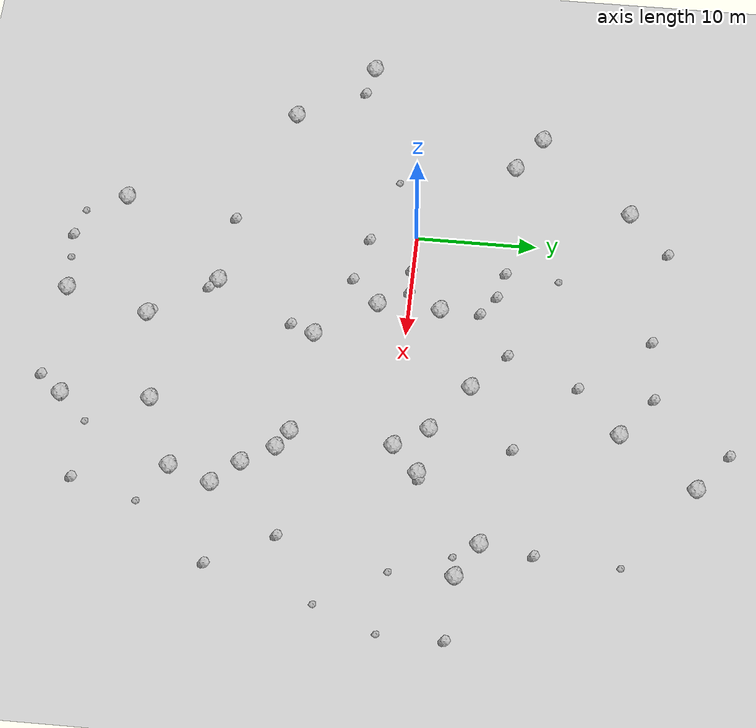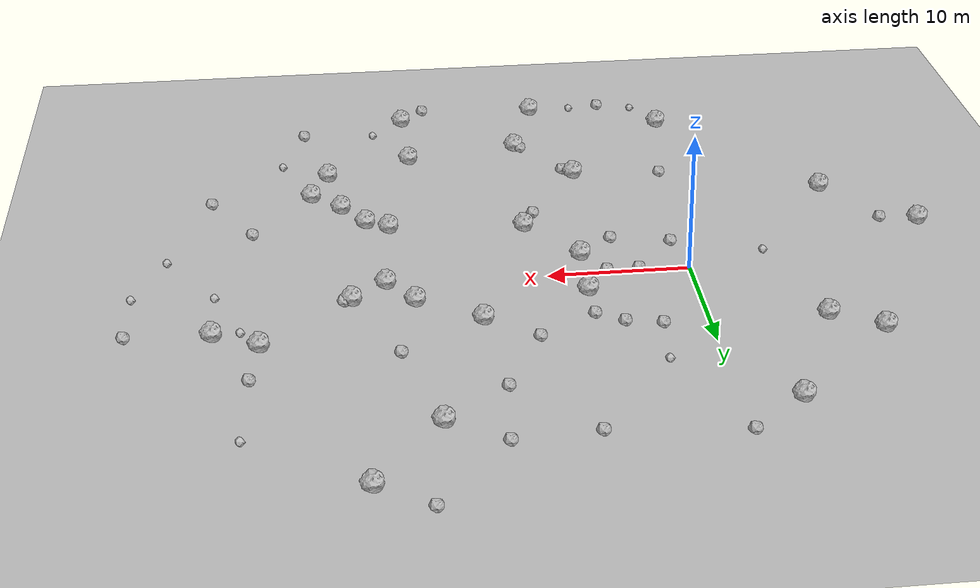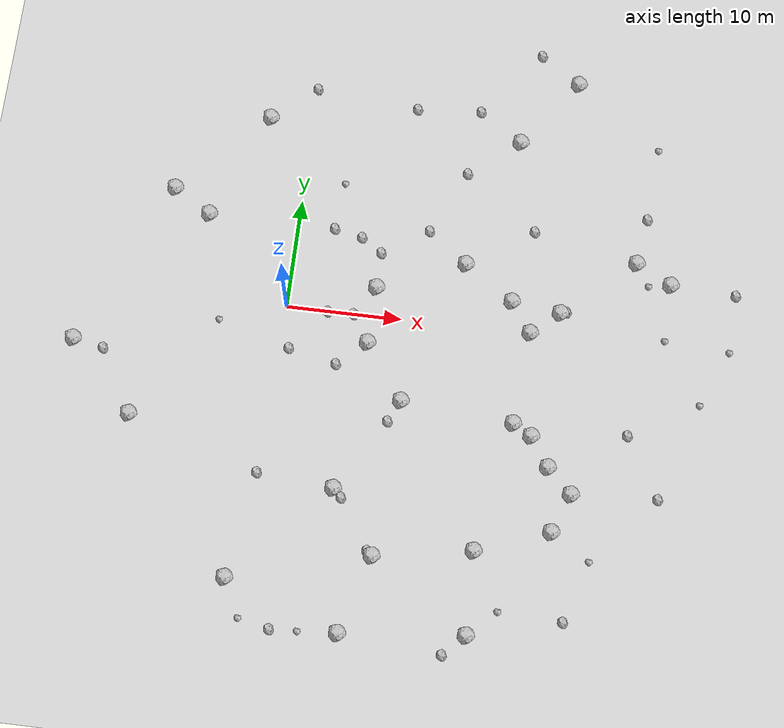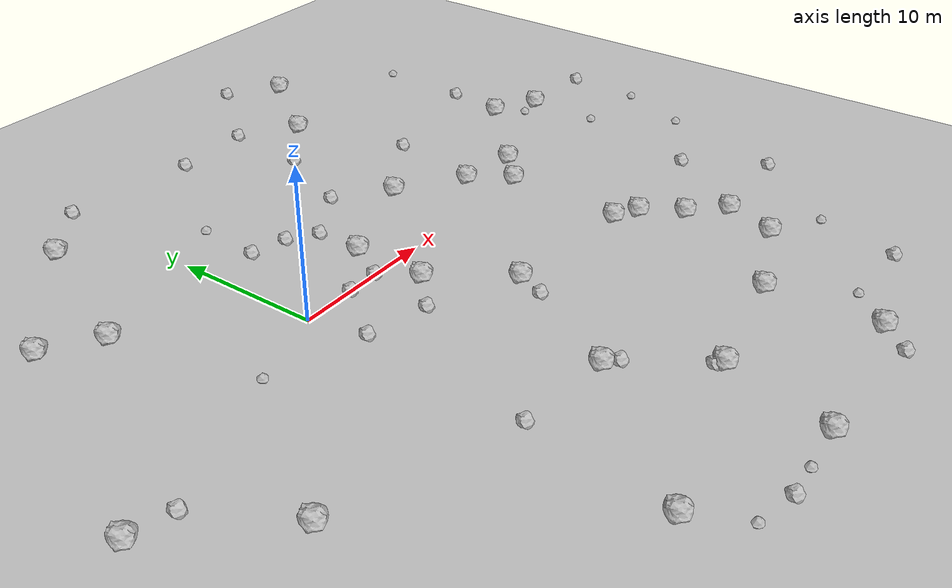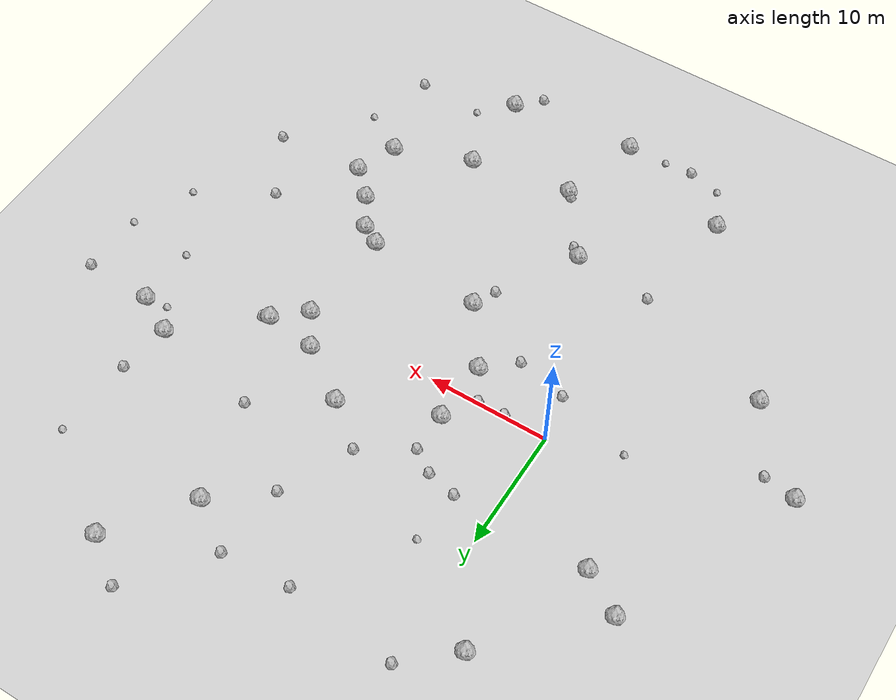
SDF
<sdf version="1.6">
 <world name="default">
  <include><uri>model://custom_ground</uri></include>
  <include><uri>model://sun</uri></include>
  <model name="rock1_0_0">
   <include><uri>model://rock1</uri><pose>6.1876728995866905 -15.851615394515106 0.5 0 0 0</pose></include>
  </model>
  <model name="rock1_0_1">
   <include><uri>model://rock1</uri><pose>19.352972901860625 2.721231807032723 0.5 0 0 0</pose></include>
  </model>
  <model name="rock1_0_2">
   <include><uri>model://rock1</uri><pose>21.21550641942369 0.021133102512848723 0.5 0 0 0</pose></include>
  </model>
  <model name="rock1_0_3">
   <include><uri>model://rock1</uri><pose>10.89624323835045 -7.450086403076913 0.5 0 0 0</pose></include>
  </model>
  <model name="rock1_0_4">
   <include><uri>model://rock1</uri><pose>26.103846802336967 -13.982679266174006 0.5 0 0 0</pose></include>
  </model>
  <model name="rock1_0_5">
   <include><uri>model://rock1</uri><pose>23.95046013513293 -11.839766026290302 0.5 0 0 0</pose></include>
  </model>
  <model name="rock1_0_6">
   <include><uri>model://rock1</uri><pose>7.407975786387858 -2.555391658508203 0.5 0 0 0</pose></include>
  </model>
  <model name="rock1_0_7">
   <include><uri>model://rock1</uri><pose>18.71334188046192 -27.05364649728247 0.5 0 0 0</pose></include>
  </model>
  <model name="rock1_0_8">
   <include><uri>model://rock1</uri><pose>-7.90248041755952 7.7034833154996605 0.5 0 0 0</pose></include>
  </model>
  <model name="rock1_0_9">
   <include><uri>model://rock1</uri><pose>-17.806441346461945 -5.223906912565184 0.5 0 0 0</pose></include>
  </model>
  <model name="rock1_0_10">
   <include><uri>model://rock1</uri><pose>-1.7556679184437627 -24.578710333432284 0.5 0 0 0</pose></include>
  </model>
  <model name="rock1_0_11">
   <include><uri>model://rock1</uri><pose>24.801766371958053 -17.442700135816334 0.5 0 0 0</pose></include>
  </model>
  <model name="rock1_0_12">
   <include><uri>model://rock1</uri><pose>18.53523371164585 -19.820987769851087 0.5 0 0 0</pose></include>
  </model>
  <model name="rock1_0_13">
   <include><uri>model://rock1</uri><pose>29.781865362698163 7.550453133508995 0.5 0 0 0</pose></include>
  </model>
  <model name="rock1_0_14">
   <include><uri>model://rock1</uri><pose>-11.242864960030186 9.802954299338701 0.5 0 0 0</pose></include>
  </model>
  <model name="rock1_0_15">
   <include><uri>model://rock1</uri><pose>22.257105909067022 -9.25009347521527 0.5 0 0 0</pose></include>
  </model>
  <model name="rock1_0_16">
   <include><uri>model://rock1</uri><pose>8.161688177759416 -28.144069004176878 0.5 0 0 0</pose></include>
  </model>
  <model name="rock1_0_17">
   <include><uri>model://rock1</uri><pose>20.62618718391918 -8.304375625665855 0.5 0 0 0</pose></include>
  </model>
  <model name="rock1_0_18">
   <include><uri>model://rock1</uri><pose>23.119881183518054 24.155103039176318 0.5 0 0 0</pose></include>
  </model>
  <model name="rock1_0_19">
   <include><uri>model://rock1</uri><pose>-3.8337683485451493 17.570967990411482 0.5 0 0 0</pose></include>
  </model>
  <model name="rock1_0_20">
   <include><uri>model://rock1</uri><pose>15.00098138588244 5.698939888929857 0.5 0 0 0</pose></include>
  </model>
  <model name="rock1_0_21">
   <include><uri>model://rock1</uri><pose>10.151045128919293 -21.275070539748825 0.5 0 0 0</pose></include>
  </model>
  <model name="rock1_0_22">
   <include><uri>model://rock1</uri><pose>23.62449907149127 2.146258695623878 0.5 0 0 0</pose></include>
  </model>
  <model name="rock1_0_23">
   <include><uri>model://rock1</uri><pose>-11.972162264924716 -11.386401269087084 0.5 0 0 0</pose></include>
  </model>
  <model name="rock1_0_24">
   <include><uri>model://rock1</uri><pose>18.53377094777742 17.846146451443076 0.5 0 0 0</pose></include>
  </model>
  <model name="rock1_0_25">
   <include><uri>model://rock1</uri><pose>32.88824853750095 5.867657308443327 0.5 0 0 0</pose></include>
  </model>
  <model name="rock1_0_26">
   <include><uri>model://rock1</uri><pose>7.548215836971494 2.587907687653292 0.5 0 0 0</pose></include>
  </model>
  <model name="rock2_0_0">
   <include><uri>model://rock2</uri><pose>24.124090310736072 2.3473752048601497 0.3 0 0 0</pose></include>
  </model>
  <model name="rock2_0_1">
   <include><uri>model://rock2</uri><pose>3.214024589187421 7.68717111389217 0.3 0 0 0</pose></include>
  </model>
  <model name="rock2_0_2">
   <include><uri>model://rock2</uri><pose>9.973573228168448 -9.388838023781926 0.3 0 0 0</pose></include>
  </model>
  <model name="rock2_0_3">
   <include><uri>model://rock2</uri><pose>19.58479661415501 26.665099791220747 0.3 0 0 0</pose></include>
  </model>
  <model name="rock2_0_4">
   <include><uri>model://rock2</uri><pose>20.642421038217833 9.498744936232875 0.3 0 0 0</pose></include>
  </model>
  <model name="rock2_0_5">
   <include><uri>model://rock2</uri><pose>-15.145908058610747 -5.744454701114286 0.3 0 0 0</pose></include>
  </model>
  <model name="rock2_0_6">
   <include><uri>model://rock2</uri><pose>6.9229297540389645 -16.551487409097525 0.3 0 0 0</pose></include>
  </model>
  <model name="rock2_0_7">
   <include><uri>model://rock2</uri><pose>-0.05401470661015395 20.953666673288453 0.3 0 0 0</pose></include>
  </model>
  <model name="rock2_0_8">
   <include><uri>model://rock2</uri><pose>33.39705520592093 -13.508044190066496 0.3 0 0 0</pose></include>
  </model>
  <model name="rock2_0_9">
   <include><uri>model://rock2</uri><pose>9.051946634351932 20.040937120101063 0.3 0 0 0</pose></include>
  </model>
  <model name="rock2_0_10">
   <include><uri>model://rock2</uri><pose>16.89041982703251 -28.88733372661306 0.3 0 0 0</pose></include>
  </model>
  <model name="rock2_0_11">
   <include><uri>model://rock2</uri><pose>5.686884451279376 7.139244055843186 0.3 0 0 0</pose></include>
  </model>
  <model name="rock2_0_12">
   <include><uri>model://rock2</uri><pose>5.8583560289077 -0.052055031787574535 0.3 0 0 0</pose></include>
  </model>
  <model name="rock2_0_13">
   <include><uri>model://rock2</uri><pose>30.347813787412747 11.850470314250813 0.3 0 0 0</pose></include>
  </model>
  <model name="rock2_0_14">
   <include><uri>model://rock2</uri><pose>4.926628572005338 -4.7842079438029295 0.3 0 0 0</pose></include>
  </model>
  <model name="rock2_0_15">
   <include><uri>model://rock2</uri><pose>38.56497525042574 5.623871621531094 0.3 0 0 0</pose></include>
  </model>
  <model name="rock2_0_16">
   <include><uri>model://rock2</uri><pose>14.187323770278027 14.325201457806784 0.3 0 0 0</pose></include>
  </model>
  <model name="rock2_0_17">
   <include><uri>model://rock2</uri><pose>0.720971604808831 -3.8297533839144577 0.3 0 0 0</pose></include>
  </model>
  <model name="rock2_0_18">
   <include><uri>model://rock2</uri><pose>2.496021060279727 -28.46013040758294 0.3 0 0 0</pose></include>
  </model>
  <model name="rock2_0_19">
   <include><uri>model://rock2</uri><pose>9.67980934367161 -20.859904127965763 0.3 0 0 0</pose></include>
  </model>
  <model name="rock2_0_20">
   <include><uri>model://rock2</uri><pose>14.711757272207784 20.46594056598974 0.3 0 0 0</pose></include>
  </model>
  <model name="rock2_0_21">
   <include><uri>model://rock2</uri><pose>30.37098494280341 -8.203032649926158 0.3 0 0 0</pose></include>
  </model>
  <model name="rock2_0_22">
   <include><uri>model://rock2</uri><pose>-0.4261029066426367 -15.214355970675186 0.3 0 0 0</pose></include>
  </model>
  <model name="rock2_0_23">
   <include><uri>model://rock2</uri><pose>7.532410709456464 5.900014929254013 0.3 0 0 0</pose></include>
  </model>
  <model name="rock2_0_24">
   <include><uri>model://rock2</uri><pose>3.594475797347229 -0.09250744986369241 0.3 0 0 0</pose></include>
  </model>
  <model name="rock2_0_25">
   <include><uri>model://rock2</uri><pose>11.495910379041181 8.455958982811651 0.3 0 0 0</pose></include>
  </model>
  <model name="rock2_0_26">
   <include><uri>model://rock2</uri><pose>26.49507695778484 -24.952664469483405 0.3 0 0 0</pose></include>
  </model>
  <model name="rock3_0_0">
   <include><uri>model://rock3</uri><pose>32.77422050448039 0.7218408615057577 0.2 0 0 0</pose></include>
  </model>
  <model name="rock3_0_1">
   <include><uri>model://rock3</uri><pose>38.388059305125196 0.32464450857484195 0.2 0 0 0</pose></include>
  </model>
  <model name="rock3_0_2">
   <include><uri>model://rock3</uri><pose>30.736816176867663 18.596759935087235 0.2 0 0 0</pose></include>
  </model>
  <model name="rock3_0_3">
   <include><uri>model://rock3</uri><pose>4.80289317804899 -28.35339389284672 0.2 0 0 0</pose></include>
  </model>
  <model name="rock3_0_4">
   <include><uri>model://rock3</uri><pose>36.223476003752765 -4.755857153081703 0.2 0 0 0</pose></include>
  </model>
  <model name="rock3_0_5">
   <include><uri>model://rock3</uri><pose>21.041897139921765 -24.728631411285985 0.2 0 0 0</pose></include>
  </model>
  <model name="rock3_0_6">
   <include><uri>model://rock3</uri><pose>-5.634833705464628 -1.9367701131880608 0.2 0 0 0</pose></include>
  </model>
  <model name="rock3_0_7">
   <include><uri>model://rock3</uri><pose>-0.21231206162326188 -27.84648028728881 0.2 0 0 0</pose></include>
  </model>
  <model name="rock3_0_8">
   <include><uri>model://rock3</uri><pose>3.542217599448744 12.068107280266503 0.2 0 0 0</pose></include>
  </model>
  <model name="rock3_0_9">
   <include><uri>model://rock3</uri><pose>30.9622476912189 5.5892473865181245 0.2 0 0 0</pose></include>
  </model>
  <model name="rock3_0_10">
   <include><uri>model://rock3</uri><pose>28.14723755509808 -19.593143849466998 0.2 0 0 0</pose></include>
  </model>
 </world>
</sdf>
